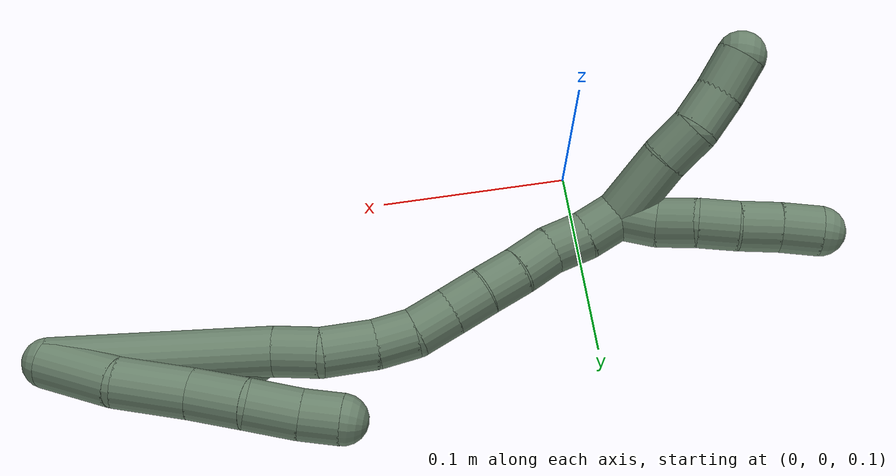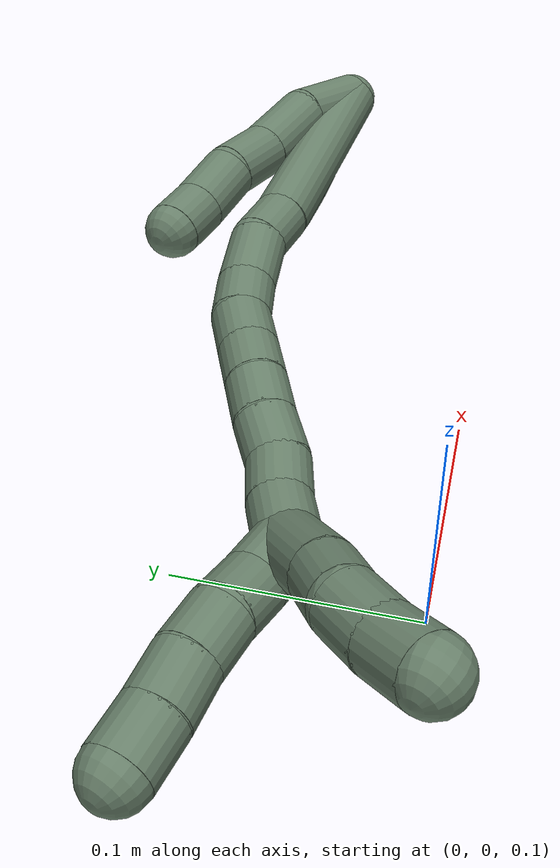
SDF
<sdf version="1.7">
 <world name="default">
  <model name="17">
   <static>0</static>
   <link name="17">
    <collision name="collision-cylinder-e_1_2_8">
     <pose>0.00078 -0.005788 0.018931 0.296702 0.039392 0.005888</pose>
     <geometry><cylinder><radius>0.0125</radius><length>0.039623</length></cylinder></geometry>
     <surface>
      <friction><ode><mu>1.16</mu><mu2>1.16</mu2><slip1>0</slip1><slip2>0</slip2></ode></friction>
      <contact><ode><kp>1e+06</kp><kd>1</kd><max_vel>0</max_vel><min_depth>0.001</min_depth></ode></contact>
     </surface>
    </collision>
    <visual name="visual-cylinder-e_1_2_8">
     <pose>0.00078 -0.005788 0.018931 0.296702 0.039392 0.005888</pose>
     <geometry><cylinder><radius>0.0125</radius><length>0.039623</length></cylinder></geometry>
     <material><ambient>0.415686 0.509804 0.423529 1</ambient></material>
    </visual>
    <collision name="collision-cylinder-e_2_8_9">
     <pose>0.00095 -0.011844 0.056234 0.014628 -0.033208 -0.000243</pose>
     <geometry><cylinder><radius>0.0125</radius><length>0.036768</length></cylinder></geometry>
     <surface>
      <friction><ode><mu>1.16</mu><mu2>1.16</mu2><slip1>0</slip1><slip2>0</slip2></ode></friction>
      <contact><ode><kp>1e+06</kp><kd>1</kd><max_vel>0</max_vel><min_depth>0.001</min_depth></ode></contact>
     </surface>
    </collision>
    <visual name="visual-cylinder-e_2_8_9">
     <pose>0.00095 -0.011844 0.056234 0.014628 -0.033208 -0.000243</pose>
     <geometry><cylinder><radius>0.0125</radius><length>0.036768</length></cylinder></geometry>
     <material><ambient>0.415686 0.509804 0.423529 1</ambient></material>
    </visual>
    <collision name="collision-cylinder-e_3_9_10">
     <pose>3e-05 -0.01422 0.08823 0.153402 -0.022469 -0.001727</pose>
     <geometry><cylinder><radius>0.0125</radius><length>0.027579</length></cylinder></geometry>
     <surface>
      <friction><ode><mu>1.16</mu><mu2>1.16</mu2><slip1>0</slip1><slip2>0</slip2></ode></friction>
      <contact><ode><kp>1e+06</kp><kd>1</kd><max_vel>0</max_vel><min_depth>0.001</min_depth></ode></contact>
     </surface>
    </collision>
    <visual name="visual-cylinder-e_3_9_10">
     <pose>3e-05 -0.01422 0.08823 0.153402 -0.022469 -0.001727</pose>
     <geometry><cylinder><radius>0.0125</radius><length>0.027579</length></cylinder></geometry>
     <material><ambient>0.415686 0.509804 0.423529 1</ambient></material>
    </visual>
    <collision name="collision-cylinder-e_4_10_11">
     <pose>5.8e-05 -0.014891 0.114761 -0.110717 0.026053 -0.001444</pose>
     <geometry><cylinder><radius>0.0125</radius><length>0.025982</length></cylinder></geometry>
     <surface>
      <friction><ode><mu>1.16</mu><mu2>1.16</mu2><slip1>0</slip1><slip2>0</slip2></ode></friction>
      <contact><ode><kp>1e+06</kp><kd>1</kd><max_vel>0</max_vel><min_depth>0.001</min_depth></ode></contact>
     </surface>
    </collision>
    <visual name="visual-cylinder-e_4_10_11">
     <pose>5.8e-05 -0.014891 0.114761 -0.110717 0.026053 -0.001444</pose>
     <geometry><cylinder><radius>0.0125</radius><length>0.025982</length></cylinder></geometry>
     <material><ambient>0.415686 0.509804 0.423529 1</ambient></material>
    </visual>
    <collision name="collision-cylinder-e_5_11_6">
     <pose>-0.000301 -0.01372 0.137665 0.026321 -0.069649 -0.000917</pose>
     <geometry><cylinder><radius>0.0125</radius><length>0.020048</length></cylinder></geometry>
     <surface>
      <friction><ode><mu>1.16</mu><mu2>1.16</mu2><slip1>0</slip1><slip2>0</slip2></ode></friction>
      <contact><ode><kp>1e+06</kp><kd>1</kd><max_vel>0</max_vel><min_depth>0.001</min_depth></ode></contact>
     </surface>
    </collision>
    <visual name="visual-cylinder-e_5_11_6">
     <pose>-0.000301 -0.01372 0.137665 0.026321 -0.069649 -0.000917</pose>
     <geometry><cylinder><radius>0.0125</radius><length>0.020048</length></cylinder></geometry>
     <material><ambient>0.415686 0.509804 0.423529 1</ambient></material>
    </visual>
    <collision name="collision-cylinder-e_1_2_12">
     <pose>-2.3e-05 5e-06 0.01 -0.000503 -0.002276 1e-06</pose>
     <geometry><cylinder><radius>0.0125</radius><length>0.02</length></cylinder></geometry>
     <surface>
      <friction><ode><mu>1.16</mu><mu2>1.16</mu2><slip1>0</slip1><slip2>0</slip2></ode></friction>
      <contact><ode><kp>1e+06</kp><kd>1</kd><max_vel>0</max_vel><min_depth>0.001</min_depth></ode></contact>
     </surface>
    </collision>
    <visual name="visual-cylinder-e_1_2_12">
     <pose>-2.3e-05 5e-06 0.01 -0.000503 -0.002276 1e-06</pose>
     <geometry><cylinder><radius>0.0125</radius><length>0.02</length></cylinder></geometry>
     <material><ambient>0.415686 0.509804 0.423529 1</ambient></material>
    </visual>
    <collision name="collision-cylinder-e_2_12_13">
     <pose>-0.00335 0.000783 0.029407 -0.081992 -0.33677 0.013946</pose>
     <geometry><cylinder><radius>0.0125</radius><length>0.02</length></cylinder></geometry>
     <surface>
      <friction><ode><mu>1.16</mu><mu2>1.16</mu2><slip1>0</slip1><slip2>0</slip2></ode></friction>
      <contact><ode><kp>1e+06</kp><kd>1</kd><max_vel>0</max_vel><min_depth>0.001</min_depth></ode></contact>
     </surface>
    </collision>
    <visual name="visual-cylinder-e_2_12_13">
     <pose>-0.00335 0.000783 0.029407 -0.081992 -0.33677 0.013946</pose>
     <geometry><cylinder><radius>0.0125</radius><length>0.02</length></cylinder></geometry>
     <material><ambient>0.415686 0.509804 0.423529 1</ambient></material>
    </visual>
    <collision name="collision-cylinder-e_3_13_14">
     <pose>-0.0077 0.004622 0.048274 -0.313439 -0.104754 0.016568</pose>
     <geometry><cylinder><radius>0.0125</radius><length>0.02</length></cylinder></geometry>
     <surface>
      <friction><ode><mu>1.16</mu><mu2>1.16</mu2><slip1>0</slip1><slip2>0</slip2></ode></friction>
      <contact><ode><kp>1e+06</kp><kd>1</kd><max_vel>0</max_vel><min_depth>0.001</min_depth></ode></contact>
     </surface>
    </collision>
    <visual name="visual-cylinder-e_3_13_14">
     <pose>-0.0077 0.004622 0.048274 -0.313439 -0.104754 0.016568</pose>
     <geometry><cylinder><radius>0.0125</radius><length>0.02</length></cylinder></geometry>
     <material><ambient>0.415686 0.509804 0.423529 1</ambient></material>
    </visual>
    <collision name="collision-cylinder-e_4_14_15">
     <pose>-0.011612 0.007846 0.067313 -0.016355 -0.290771 0.002395</pose>
     <geometry><cylinder><radius>0.0125</radius><length>0.02</length></cylinder></geometry>
     <surface>
      <friction><ode><mu>1.16</mu><mu2>1.16</mu2><slip1>0</slip1><slip2>0</slip2></ode></friction>
      <contact><ode><kp>1e+06</kp><kd>1</kd><max_vel>0</max_vel><min_depth>0.001</min_depth></ode></contact>
     </surface>
    </collision>
    <visual name="visual-cylinder-e_4_14_15">
     <pose>-0.011612 0.007846 0.067313 -0.016355 -0.290771 0.002395</pose>
     <geometry><cylinder><radius>0.0125</radius><length>0.02</length></cylinder></geometry>
     <material><ambient>0.415686 0.509804 0.423529 1</ambient></material>
    </visual>
    <collision name="collision-cylinder-e_5_15_5">
     <pose>-0.016532 0.00849 0.086667 -0.049849 -0.206732 0.005172</pose>
     <geometry><cylinder><radius>0.0125</radius><length>0.02</length></cylinder></geometry>
     <surface>
      <friction><ode><mu>1.16</mu><mu2>1.16</mu2><slip1>0</slip1><slip2>0</slip2></ode></friction>
      <contact><ode><kp>1e+06</kp><kd>1</kd><max_vel>0</max_vel><min_depth>0.001</min_depth></ode></contact>
     </surface>
    </collision>
    <visual name="visual-cylinder-e_5_15_5">
     <pose>-0.016532 0.00849 0.086667 -0.049849 -0.206732 0.005172</pose>
     <geometry><cylinder><radius>0.0125</radius><length>0.02</length></cylinder></geometry>
     <material><ambient>0.415686 0.509804 0.423529 1</ambient></material>
    </visual>
    <collision name="collision-cylinder-e_1_2_16">
     <pose>-0.012331 0.002821 0.053541 -0.052641 -0.226056 0.005977</pose>
     <geometry><cylinder><radius>0.0125</radius><length>0.11003</length></cylinder></geometry>
     <surface>
      <friction><ode><mu>1.16</mu><mu2>1.16</mu2><slip1>0</slip1><slip2>0</slip2></ode></friction>
      <contact><ode><kp>1e+06</kp><kd>1</kd><max_vel>0</max_vel><min_depth>0.001</min_depth></ode></contact>
     </surface>
    </collision>
    <visual name="visual-cylinder-e_1_2_16">
     <pose>-0.012331 0.002821 0.053541 -0.052641 -0.226056 0.005977</pose>
     <geometry><cylinder><radius>0.0125</radius><length>0.11003</length></cylinder></geometry>
     <material><ambient>0.415686 0.509804 0.423529 1</ambient></material>
    </visual>
    <collision name="collision-cylinder-e_2_16_17">
     <pose>-0.026419 0.005103 0.118331 0.047865 -0.154813 -0.003713</pose>
     <geometry><cylinder><radius>0.0125</radius><length>0.022796</length></cylinder></geometry>
     <surface>
      <friction><ode><mu>1.16</mu><mu2>1.16</mu2><slip1>0</slip1><slip2>0</slip2></ode></friction>
      <contact><ode><kp>1e+06</kp><kd>1</kd><max_vel>0</max_vel><min_depth>0.001</min_depth></ode></contact>
     </surface>
    </collision>
    <visual name="visual-cylinder-e_2_16_17">
     <pose>-0.026419 0.005103 0.118331 0.047865 -0.154813 -0.003713</pose>
     <geometry><cylinder><radius>0.0125</radius><length>0.022796</length></cylinder></geometry>
     <material><ambient>0.415686 0.509804 0.423529 1</ambient></material>
    </visual>
    <collision name="collision-cylinder-e_3_17_18">
     <pose>-0.032209 0.007654 0.141949 -0.244719 -0.3063 0.03796</pose>
     <geometry><cylinder><radius>0.0125</radius><length>0.026744</length></cylinder></geometry>
     <surface>
      <friction><ode><mu>1.16</mu><mu2>1.16</mu2><slip1>0</slip1><slip2>0</slip2></ode></friction>
      <contact><ode><kp>1e+06</kp><kd>1</kd><max_vel>0</max_vel><min_depth>0.001</min_depth></ode></contact>
     </surface>
    </collision>
    <visual name="visual-cylinder-e_3_17_18">
     <pose>-0.032209 0.007654 0.141949 -0.244719 -0.3063 0.03796</pose>
     <geometry><cylinder><radius>0.0125</radius><length>0.026744</length></cylinder></geometry>
     <material><ambient>0.415686 0.509804 0.423529 1</ambient></material>
    </visual>
    <collision name="collision-cylinder-e_4_18_19">
     <pose>-0.040567 0.012445 0.163185 -0.189663 -0.446879 0.043221</pose>
     <geometry><cylinder><radius>0.0125</radius><length>0.020023</length></cylinder></geometry>
     <surface>
      <friction><ode><mu>1.16</mu><mu2>1.16</mu2><slip1>0</slip1><slip2>0</slip2></ode></friction>
      <contact><ode><kp>1e+06</kp><kd>1</kd><max_vel>0</max_vel><min_depth>0.001</min_depth></ode></contact>
     </surface>
    </collision>
    <visual name="visual-cylinder-e_4_18_19">
     <pose>-0.040567 0.012445 0.163185 -0.189663 -0.446879 0.043221</pose>
     <geometry><cylinder><radius>0.0125</radius><length>0.020023</length></cylinder></geometry>
     <material><ambient>0.415686 0.509804 0.423529 1</ambient></material>
    </visual>
    <collision name="collision-cylinder-e_5_19_20">
     <pose>-0.051366 0.016525 0.179566 -0.306585 -0.687556 0.110511</pose>
     <geometry><cylinder><radius>0.0125</radius><length>0.020397</length></cylinder></geometry>
     <surface>
      <friction><ode><mu>1.16</mu><mu2>1.16</mu2><slip1>0</slip1><slip2>0</slip2></ode></friction>
      <contact><ode><kp>1e+06</kp><kd>1</kd><max_vel>0</max_vel><min_depth>0.001</min_depth></ode></contact>
     </surface>
    </collision>
    <visual name="visual-cylinder-e_5_19_20">
     <pose>-0.051366 0.016525 0.179566 -0.306585 -0.687556 0.110511</pose>
     <geometry><cylinder><radius>0.0125</radius><length>0.020397</length></cylinder></geometry>
     <material><ambient>0.415686 0.509804 0.423529 1</ambient></material>
    </visual>
    <collision name="collision-cylinder-e_6_20_21">
     <pose>-0.064299 0.02087 0.194457 -0.260424 -0.702271 0.095867</pose>
     <geometry><cylinder><radius>0.0125</radius><length>0.020002</length></cylinder></geometry>
     <surface>
      <friction><ode><mu>1.16</mu><mu2>1.16</mu2><slip1>0</slip1><slip2>0</slip2></ode></friction>
      <contact><ode><kp>1e+06</kp><kd>1</kd><max_vel>0</max_vel><min_depth>0.001</min_depth></ode></contact>
     </surface>
    </collision>
    <visual name="visual-cylinder-e_6_20_21">
     <pose>-0.064299 0.02087 0.194457 -0.260424 -0.702271 0.095867</pose>
     <geometry><cylinder><radius>0.0125</radius><length>0.020002</length></cylinder></geometry>
     <material><ambient>0.415686 0.509804 0.423529 1</ambient></material>
    </visual>
    <collision name="collision-cylinder-e_7_21_22">
     <pose>-0.076959 0.025612 0.209177 -0.361472 -0.668475 0.126742</pose>
     <geometry><cylinder><radius>0.0125</radius><length>0.020006</length></cylinder></geometry>
     <surface>
      <friction><ode><mu>1.16</mu><mu2>1.16</mu2><slip1>0</slip1><slip2>0</slip2></ode></friction>
      <contact><ode><kp>1e+06</kp><kd>1</kd><max_vel>0</max_vel><min_depth>0.001</min_depth></ode></contact>
     </surface>
    </collision>
    <visual name="visual-cylinder-e_7_21_22">
     <pose>-0.076959 0.025612 0.209177 -0.361472 -0.668475 0.126742</pose>
     <geometry><cylinder><radius>0.0125</radius><length>0.020006</length></cylinder></geometry>
     <material><ambient>0.415686 0.509804 0.423529 1</ambient></material>
    </visual>
    <collision name="collision-cylinder-e_8_22_23">
     <pose>-0.089613 0.031893 0.223308 -0.4766 -0.701462 0.177279</pose>
     <geometry><cylinder><radius>0.0125</radius><length>0.020001</length></cylinder></geometry>
     <surface>
      <friction><ode><mu>1.16</mu><mu2>1.16</mu2><slip1>0</slip1><slip2>0</slip2></ode></friction>
      <contact><ode><kp>1e+06</kp><kd>1</kd><max_vel>0</max_vel><min_depth>0.001</min_depth></ode></contact>
     </surface>
    </collision>
    <visual name="visual-cylinder-e_8_22_23">
     <pose>-0.089613 0.031893 0.223308 -0.4766 -0.701462 0.177279</pose>
     <geometry><cylinder><radius>0.0125</radius><length>0.020001</length></cylinder></geometry>
     <material><ambient>0.415686 0.509804 0.423529 1</ambient></material>
    </visual>
    <collision name="collision-cylinder-e_9_23_24">
     <pose>-0.101443 0.037019 0.23837 -0.193541 -0.567607 0.056613</pose>
     <geometry><cylinder><radius>0.0125</radius><length>0.02</length></cylinder></geometry>
     <surface>
      <friction><ode><mu>1.16</mu><mu2>1.16</mu2><slip1>0</slip1><slip2>0</slip2></ode></friction>
      <contact><ode><kp>1e+06</kp><kd>1</kd><max_vel>0</max_vel><min_depth>0.001</min_depth></ode></contact>
     </surface>
    </collision>
    <visual name="visual-cylinder-e_9_23_24">
     <pose>-0.101443 0.037019 0.23837 -0.193541 -0.567607 0.056613</pose>
     <geometry><cylinder><radius>0.0125</radius><length>0.02</length></cylinder></geometry>
     <material><ambient>0.415686 0.509804 0.423529 1</ambient></material>
    </visual>
    <collision name="collision-cylinder-e_10_24_1">
     <pose>-0.113444 0.039606 0.254073 -0.129246 -0.724155 0.049014</pose>
     <geometry><cylinder><radius>0.0125</radius><length>0.02</length></cylinder></geometry>
     <surface>
      <friction><ode><mu>1.16</mu><mu2>1.16</mu2><slip1>0</slip1><slip2>0</slip2></ode></friction>
      <contact><ode><kp>1e+06</kp><kd>1</kd><max_vel>0</max_vel><min_depth>0.001</min_depth></ode></contact>
     </surface>
    </collision>
    <visual name="visual-cylinder-e_10_24_1">
     <pose>-0.113444 0.039606 0.254073 -0.129246 -0.724155 0.049014</pose>
     <geometry><cylinder><radius>0.0125</radius><length>0.02</length></cylinder></geometry>
     <material><ambient>0.415686 0.509804 0.423529 1</ambient></material>
    </visual>
    <collision name="collision-cylinder-e_1_1_25">
     <pose>-0.1198 0.040021 0.271483 0.055101 0.026955 0.000743</pose>
     <geometry><cylinder><radius>0.0125</radius><length>0.02</length></cylinder></geometry>
     <surface>
      <friction><ode><mu>1.16</mu><mu2>1.16</mu2><slip1>0</slip1><slip2>0</slip2></ode></friction>
      <contact><ode><kp>1e+06</kp><kd>1</kd><max_vel>0</max_vel><min_depth>0.001</min_depth></ode></contact>
     </surface>
    </collision>
    <visual name="visual-cylinder-e_1_1_25">
     <pose>-0.1198 0.040021 0.271483 0.055101 0.026955 0.000743</pose>
     <geometry><cylinder><radius>0.0125</radius><length>0.02</length></cylinder></geometry>
     <material><ambient>0.415686 0.509804 0.423529 1</ambient></material>
    </visual>
    <collision name="collision-cylinder-e_2_25_26">
     <pose>-0.121047 0.036673 0.290944 0.286983 -0.152277 -0.022043</pose>
     <geometry><cylinder><radius>0.0125</radius><length>0.02</length></cylinder></geometry>
     <surface>
      <friction><ode><mu>1.16</mu><mu2>1.16</mu2><slip1>0</slip1><slip2>0</slip2></ode></friction>
      <contact><ode><kp>1e+06</kp><kd>1</kd><max_vel>0</max_vel><min_depth>0.001</min_depth></ode></contact>
     </surface>
    </collision>
    <visual name="visual-cylinder-e_2_25_26">
     <pose>-0.121047 0.036673 0.290944 0.286983 -0.152277 -0.022043</pose>
     <geometry><cylinder><radius>0.0125</radius><length>0.02</length></cylinder></geometry>
     <material><ambient>0.415686 0.509804 0.423529 1</ambient></material>
    </visual>
    <collision name="collision-cylinder-e_3_26_27">
     <pose>-0.123489 0.033092 0.31035 0.078784 -0.092642 -0.003654</pose>
     <geometry><cylinder><radius>0.0125</radius><length>0.02</length></cylinder></geometry>
     <surface>
      <friction><ode><mu>1.16</mu><mu2>1.16</mu2><slip1>0</slip1><slip2>0</slip2></ode></friction>
      <contact><ode><kp>1e+06</kp><kd>1</kd><max_vel>0</max_vel><min_depth>0.001</min_depth></ode></contact>
     </surface>
    </collision>
    <visual name="visual-cylinder-e_3_26_27">
     <pose>-0.123489 0.033092 0.31035 0.078784 -0.092642 -0.003654</pose>
     <geometry><cylinder><radius>0.0125</radius><length>0.02</length></cylinder></geometry>
     <material><ambient>0.415686 0.509804 0.423529 1</ambient></material>
    </visual>
    <collision name="collision-cylinder-e_4_27_28">
     <pose>-0.125851 0.032515 0.33017 -0.020974 -0.144223 0.001515</pose>
     <geometry><cylinder><radius>0.0125</radius><length>0.02</length></cylinder></geometry>
     <surface>
      <friction><ode><mu>1.16</mu><mu2>1.16</mu2><slip1>0</slip1><slip2>0</slip2></ode></friction>
      <contact><ode><kp>1e+06</kp><kd>1</kd><max_vel>0</max_vel><min_depth>0.001</min_depth></ode></contact>
     </surface>
    </collision>
    <visual name="visual-cylinder-e_4_27_28">
     <pose>-0.125851 0.032515 0.33017 -0.020974 -0.144223 0.001515</pose>
     <geometry><cylinder><radius>0.0125</radius><length>0.02</length></cylinder></geometry>
     <material><ambient>0.415686 0.509804 0.423529 1</ambient></material>
    </visual>
    <collision name="collision-cylinder-e_5_28_4">
     <pose>-0.128091 0.032683 0.350032 0.003973 -0.080373 -0.00016</pose>
     <geometry><cylinder><radius>0.0125</radius><length>0.02</length></cylinder></geometry>
     <surface>
      <friction><ode><mu>1.16</mu><mu2>1.16</mu2><slip1>0</slip1><slip2>0</slip2></ode></friction>
      <contact><ode><kp>1e+06</kp><kd>1</kd><max_vel>0</max_vel><min_depth>0.001</min_depth></ode></contact>
     </surface>
    </collision>
    <visual name="visual-cylinder-e_5_28_4">
     <pose>-0.128091 0.032683 0.350032 0.003973 -0.080373 -0.00016</pose>
     <geometry><cylinder><radius>0.0125</radius><length>0.02</length></cylinder></geometry>
     <material><ambient>0.415686 0.509804 0.423529 1</ambient></material>
    </visual>
    <collision name="collision-cylinder-e_1_1_29">
     <pose>-0.135487 0.035862 0.269988 0.50664 -1.00894 -0.283946</pose>
     <geometry><cylinder><radius>0.0125</radius><length>0.036437</length></cylinder></geometry>
     <surface>
      <friction><ode><mu>1.16</mu><mu2>1.16</mu2><slip1>0</slip1><slip2>0</slip2></ode></friction>
      <contact><ode><kp>1e+06</kp><kd>1</kd><max_vel>0</max_vel><min_depth>0.001</min_depth></ode></contact>
     </surface>
    </collision>
    <visual name="visual-cylinder-e_1_1_29">
     <pose>-0.135487 0.035862 0.269988 0.50664 -1.00894 -0.283946</pose>
     <geometry><cylinder><radius>0.0125</radius><length>0.036437</length></cylinder></geometry>
     <material><ambient>0.415686 0.509804 0.423529 1</ambient></material>
    </visual>
    <collision name="collision-cylinder-e_2_29_30">
     <pose>-0.159467 0.02897 0.28444 0.350724 -0.932511 -0.177868</pose>
     <geometry><cylinder><radius>0.0125</radius><length>0.021322</length></cylinder></geometry>
     <surface>
      <friction><ode><mu>1.16</mu><mu2>1.16</mu2><slip1>0</slip1><slip2>0</slip2></ode></friction>
      <contact><ode><kp>1e+06</kp><kd>1</kd><max_vel>0</max_vel><min_depth>0.001</min_depth></ode></contact>
     </surface>
    </collision>
    <visual name="visual-cylinder-e_2_29_30">
     <pose>-0.159467 0.02897 0.28444 0.350724 -0.932511 -0.177868</pose>
     <geometry><cylinder><radius>0.0125</radius><length>0.021322</length></cylinder></geometry>
     <material><ambient>0.415686 0.509804 0.423529 1</ambient></material>
    </visual>
    <collision name="collision-cylinder-e_3_30_31">
     <pose>-0.177483 0.027176 0.294736 -0.089576 -1.1398 0.057425</pose>
     <geometry><cylinder><radius>0.0125</radius><length>0.020812</length></cylinder></geometry>
     <surface>
      <friction><ode><mu>1.16</mu><mu2>1.16</mu2><slip1>0</slip1><slip2>0</slip2></ode></friction>
      <contact><ode><kp>1e+06</kp><kd>1</kd><max_vel>0</max_vel><min_depth>0.001</min_depth></ode></contact>
     </surface>
    </collision>
    <visual name="visual-cylinder-e_3_30_31">
     <pose>-0.177483 0.027176 0.294736 -0.089576 -1.1398 0.057425</pose>
     <geometry><cylinder><radius>0.0125</radius><length>0.020812</length></cylinder></geometry>
     <material><ambient>0.415686 0.509804 0.423529 1</ambient></material>
    </visual>
    <collision name="collision-cylinder-e_4_31_3">
     <pose>-0.196991 0.026996 0.302726 0.15425 -1.21774 -0.107659</pose>
     <geometry><cylinder><radius>0.0125</radius><length>0.021429</length></cylinder></geometry>
     <surface>
      <friction><ode><mu>1.16</mu><mu2>1.16</mu2><slip1>0</slip1><slip2>0</slip2></ode></friction>
      <contact><ode><kp>1e+06</kp><kd>1</kd><max_vel>0</max_vel><min_depth>0.001</min_depth></ode></contact>
     </surface>
    </collision>
    <visual name="visual-cylinder-e_4_31_3">
     <pose>-0.196991 0.026996 0.302726 0.15425 -1.21774 -0.107659</pose>
     <geometry><cylinder><radius>0.0125</radius><length>0.021429</length></cylinder></geometry>
     <material><ambient>0.415686 0.509804 0.423529 1</ambient></material>
    </visual>
    <collision name="collision-sphere-3">
     <pose>-0.207045 0.026427 0.306387 0 -0 0</pose>
     <geometry><sphere><radius>0.0125</radius></sphere></geometry>
     <surface>
      <friction><ode><mu>1.16</mu><mu2>1.16</mu2><slip1>0</slip1><slip2>0</slip2></ode></friction>
      <contact><ode><kp>1e+06</kp><kd>1</kd><max_vel>0</max_vel><min_depth>0.001</min_depth></ode></contact>
     </surface>
    </collision>
    <visual name="visual-sphere-3">
     <pose>-0.207045 0.026427 0.306387 0 -0 0</pose>
     <geometry><sphere><radius>0.0125</radius></sphere></geometry>
     <material><ambient>0.415686 0.509804 0.423529 1</ambient></material>
    </visual>
    <collision name="collision-sphere-31">
     <pose>-0.186937 0.027565 0.299065 0 -0 0</pose>
     <geometry><sphere><radius>0.0125</radius></sphere></geometry>
     <surface>
      <friction><ode><mu>1.16</mu><mu2>1.16</mu2><slip1>0</slip1><slip2>0</slip2></ode></friction>
      <contact><ode><kp>1e+06</kp><kd>1</kd><max_vel>0</max_vel><min_depth>0.001</min_depth></ode></contact>
     </surface>
    </collision>
    <visual name="visual-sphere-31">
     <pose>-0.186937 0.027565 0.299065 0 -0 0</pose>
     <geometry><sphere><radius>0.0125</radius></sphere></geometry>
     <material><ambient>0.415686 0.509804 0.423529 1</ambient></material>
    </visual>
    <collision name="collision-sphere-30">
     <pose>-0.168029 0.026788 0.290406 0 -0 0</pose>
     <geometry><sphere><radius>0.0125</radius></sphere></geometry>
     <surface>
      <friction><ode><mu>1.16</mu><mu2>1.16</mu2><slip1>0</slip1><slip2>0</slip2></ode></friction>
      <contact><ode><kp>1e+06</kp><kd>1</kd><max_vel>0</max_vel><min_depth>0.001</min_depth></ode></contact>
     </surface>
    </collision>
    <visual name="visual-sphere-30">
     <pose>-0.168029 0.026788 0.290406 0 -0 0</pose>
     <geometry><sphere><radius>0.0125</radius></sphere></geometry>
     <material><ambient>0.415686 0.509804 0.423529 1</ambient></material>
    </visual>
    <collision name="collision-sphere-29">
     <pose>-0.150905 0.031152 0.278475 0 -0 0</pose>
     <geometry><sphere><radius>0.0125</radius></sphere></geometry>
     <surface>
      <friction><ode><mu>1.16</mu><mu2>1.16</mu2><slip1>0</slip1><slip2>0</slip2></ode></friction>
      <contact><ode><kp>1e+06</kp><kd>1</kd><max_vel>0</max_vel><min_depth>0.001</min_depth></ode></contact>
     </surface>
    </collision>
    <visual name="visual-sphere-29">
     <pose>-0.150905 0.031152 0.278475 0 -0 0</pose>
     <geometry><sphere><radius>0.0125</radius></sphere></geometry>
     <material><ambient>0.415686 0.509804 0.423529 1</ambient></material>
    </visual>
    <collision name="collision-sphere-4">
     <pose>-0.128894 0.032644 0.36 0 -0 0</pose>
     <geometry><sphere><radius>0.0125</radius></sphere></geometry>
     <surface>
      <friction><ode><mu>1.16</mu><mu2>1.16</mu2><slip1>0</slip1><slip2>0</slip2></ode></friction>
      <contact><ode><kp>1e+06</kp><kd>1</kd><max_vel>0</max_vel><min_depth>0.001</min_depth></ode></contact>
     </surface>
    </collision>
    <visual name="visual-sphere-4">
     <pose>-0.128894 0.032644 0.36 0 -0 0</pose>
     <geometry><sphere><radius>0.0125</radius></sphere></geometry>
     <material><ambient>0.415686 0.509804 0.423529 1</ambient></material>
    </visual>
    <collision name="collision-sphere-28">
     <pose>-0.127289 0.032723 0.340064 0 -0 0</pose>
     <geometry><sphere><radius>0.0125</radius></sphere></geometry>
     <surface>
      <friction><ode><mu>1.16</mu><mu2>1.16</mu2><slip1>0</slip1><slip2>0</slip2></ode></friction>
      <contact><ode><kp>1e+06</kp><kd>1</kd><max_vel>0</max_vel><min_depth>0.001</min_depth></ode></contact>
     </surface>
    </collision>
    <visual name="visual-sphere-28">
     <pose>-0.127289 0.032723 0.340064 0 -0 0</pose>
     <geometry><sphere><radius>0.0125</radius></sphere></geometry>
     <material><ambient>0.415686 0.509804 0.423529 1</ambient></material>
    </visual>
    <collision name="collision-sphere-27">
     <pose>-0.124414 0.032308 0.320276 0 -0 0</pose>
     <geometry><sphere><radius>0.0125</radius></sphere></geometry>
     <surface>
      <friction><ode><mu>1.16</mu><mu2>1.16</mu2><slip1>0</slip1><slip2>0</slip2></ode></friction>
      <contact><ode><kp>1e+06</kp><kd>1</kd><max_vel>0</max_vel><min_depth>0.001</min_depth></ode></contact>
     </surface>
    </collision>
    <visual name="visual-sphere-27">
     <pose>-0.124414 0.032308 0.320276 0 -0 0</pose>
     <geometry><sphere><radius>0.0125</radius></sphere></geometry>
     <material><ambient>0.415686 0.509804 0.423529 1</ambient></material>
    </visual>
    <collision name="collision-sphere-26">
     <pose>-0.122564 0.033875 0.300424 0 -0 0</pose>
     <geometry><sphere><radius>0.0125</radius></sphere></geometry>
     <surface>
      <friction><ode><mu>1.16</mu><mu2>1.16</mu2><slip1>0</slip1><slip2>0</slip2></ode></friction>
      <contact><ode><kp>1e+06</kp><kd>1</kd><max_vel>0</max_vel><min_depth>0.001</min_depth></ode></contact>
     </surface>
    </collision>
    <visual name="visual-sphere-26">
     <pose>-0.122564 0.033875 0.300424 0 -0 0</pose>
     <geometry><sphere><radius>0.0125</radius></sphere></geometry>
     <material><ambient>0.415686 0.509804 0.423529 1</ambient></material>
    </visual>
    <collision name="collision-sphere-25">
     <pose>-0.11953 0.039471 0.281464 0 -0 0</pose>
     <geometry><sphere><radius>0.0125</radius></sphere></geometry>
     <surface>
      <friction><ode><mu>1.16</mu><mu2>1.16</mu2><slip1>0</slip1><slip2>0</slip2></ode></friction>
      <contact><ode><kp>1e+06</kp><kd>1</kd><max_vel>0</max_vel><min_depth>0.001</min_depth></ode></contact>
     </surface>
    </collision>
    <visual name="visual-sphere-25">
     <pose>-0.11953 0.039471 0.281464 0 -0 0</pose>
     <geometry><sphere><radius>0.0125</radius></sphere></geometry>
     <material><ambient>0.415686 0.509804 0.423529 1</ambient></material>
    </visual>
    <collision name="collision-sphere-1">
     <pose>-0.120069 0.040572 0.261502 0 -0 0</pose>
     <geometry><sphere><radius>0.0125</radius></sphere></geometry>
     <surface>
      <friction><ode><mu>1.16</mu><mu2>1.16</mu2><slip1>0</slip1><slip2>0</slip2></ode></friction>
      <contact><ode><kp>1e+06</kp><kd>1</kd><max_vel>0</max_vel><min_depth>0.001</min_depth></ode></contact>
     </surface>
    </collision>
    <visual name="visual-sphere-1">
     <pose>-0.120069 0.040572 0.261502 0 -0 0</pose>
     <geometry><sphere><radius>0.0125</radius></sphere></geometry>
     <material><ambient>0.415686 0.509804 0.423529 1</ambient></material>
    </visual>
    <collision name="collision-sphere-24">
     <pose>-0.106819 0.038641 0.246645 0 -0 0</pose>
     <geometry><sphere><radius>0.0125</radius></sphere></geometry>
     <surface>
      <friction><ode><mu>1.16</mu><mu2>1.16</mu2><slip1>0</slip1><slip2>0</slip2></ode></friction>
      <contact><ode><kp>1e+06</kp><kd>1</kd><max_vel>0</max_vel><min_depth>0.001</min_depth></ode></contact>
     </surface>
    </collision>
    <visual name="visual-sphere-24">
     <pose>-0.106819 0.038641 0.246645 0 -0 0</pose>
     <geometry><sphere><radius>0.0125</radius></sphere></geometry>
     <material><ambient>0.415686 0.509804 0.423529 1</ambient></material>
    </visual>
    <collision name="collision-sphere-23">
     <pose>-0.096066 0.035397 0.230096 0 -0 0</pose>
     <geometry><sphere><radius>0.0125</radius></sphere></geometry>
     <surface>
      <friction><ode><mu>1.16</mu><mu2>1.16</mu2><slip1>0</slip1><slip2>0</slip2></ode></friction>
      <contact><ode><kp>1e+06</kp><kd>1</kd><max_vel>0</max_vel><min_depth>0.001</min_depth></ode></contact>
     </surface>
    </collision>
    <visual name="visual-sphere-23">
     <pose>-0.096066 0.035397 0.230096 0 -0 0</pose>
     <geometry><sphere><radius>0.0125</radius></sphere></geometry>
     <material><ambient>0.415686 0.509804 0.423529 1</ambient></material>
    </visual>
    <collision name="collision-sphere-22">
     <pose>-0.083159 0.028388 0.21652 0 -0 0</pose>
     <geometry><sphere><radius>0.0125</radius></sphere></geometry>
     <surface>
      <friction><ode><mu>1.16</mu><mu2>1.16</mu2><slip1>0</slip1><slip2>0</slip2></ode></friction>
      <contact><ode><kp>1e+06</kp><kd>1</kd><max_vel>0</max_vel><min_depth>0.001</min_depth></ode></contact>
     </surface>
    </collision>
    <visual name="visual-sphere-22">
     <pose>-0.083159 0.028388 0.21652 0 -0 0</pose>
     <geometry><sphere><radius>0.0125</radius></sphere></geometry>
     <material><ambient>0.415686 0.509804 0.423529 1</ambient></material>
    </visual>
    <collision name="collision-sphere-21">
     <pose>-0.07076 0.022836 0.201834 0 -0 0</pose>
     <geometry><sphere><radius>0.0125</radius></sphere></geometry>
     <surface>
      <friction><ode><mu>1.16</mu><mu2>1.16</mu2><slip1>0</slip1><slip2>0</slip2></ode></friction>
      <contact><ode><kp>1e+06</kp><kd>1</kd><max_vel>0</max_vel><min_depth>0.001</min_depth></ode></contact>
     </surface>
    </collision>
    <visual name="visual-sphere-21">
     <pose>-0.07076 0.022836 0.201834 0 -0 0</pose>
     <geometry><sphere><radius>0.0125</radius></sphere></geometry>
     <material><ambient>0.415686 0.509804 0.423529 1</ambient></material>
    </visual>
    <collision name="collision-sphere-6">
     <pose>-0.000998 -0.013983 0.147661 0 -0 0</pose>
     <geometry><sphere><radius>0.0125</radius></sphere></geometry>
     <surface>
      <friction><ode><mu>1.16</mu><mu2>1.16</mu2><slip1>0</slip1><slip2>0</slip2></ode></friction>
      <contact><ode><kp>1e+06</kp><kd>1</kd><max_vel>0</max_vel><min_depth>0.001</min_depth></ode></contact>
     </surface>
    </collision>
    <visual name="visual-sphere-6">
     <pose>-0.000998 -0.013983 0.147661 0 -0 0</pose>
     <geometry><sphere><radius>0.0125</radius></sphere></geometry>
     <material><ambient>0.415686 0.509804 0.423529 1</ambient></material>
    </visual>
    <collision name="collision-sphere-11">
     <pose>0.000397 -0.013456 0.127668 0 -0 0</pose>
     <geometry><sphere><radius>0.0125</radius></sphere></geometry>
     <surface>
      <friction><ode><mu>1.16</mu><mu2>1.16</mu2><slip1>0</slip1><slip2>0</slip2></ode></friction>
      <contact><ode><kp>1e+06</kp><kd>1</kd><max_vel>0</max_vel><min_depth>0.001</min_depth></ode></contact>
     </surface>
    </collision>
    <visual name="visual-sphere-11">
     <pose>0.000397 -0.013456 0.127668 0 -0 0</pose>
     <geometry><sphere><radius>0.0125</radius></sphere></geometry>
     <material><ambient>0.415686 0.509804 0.423529 1</ambient></material>
    </visual>
    <collision name="collision-sphere-10">
     <pose>-0.00028 -0.016326 0.101854 0 -0 0</pose>
     <geometry><sphere><radius>0.0125</radius></sphere></geometry>
     <surface>
      <friction><ode><mu>1.16</mu><mu2>1.16</mu2><slip1>0</slip1><slip2>0</slip2></ode></friction>
      <contact><ode><kp>1e+06</kp><kd>1</kd><max_vel>0</max_vel><min_depth>0.001</min_depth></ode></contact>
     </surface>
    </collision>
    <visual name="visual-sphere-10">
     <pose>-0.00028 -0.016326 0.101854 0 -0 0</pose>
     <geometry><sphere><radius>0.0125</radius></sphere></geometry>
     <material><ambient>0.415686 0.509804 0.423529 1</ambient></material>
    </visual>
    <collision name="collision-sphere-9">
     <pose>0.00034 -0.012113 0.074606 0 -0 0</pose>
     <geometry><sphere><radius>0.0125</radius></sphere></geometry>
     <surface>
      <friction><ode><mu>1.16</mu><mu2>1.16</mu2><slip1>0</slip1><slip2>0</slip2></ode></friction>
      <contact><ode><kp>1e+06</kp><kd>1</kd><max_vel>0</max_vel><min_depth>0.001</min_depth></ode></contact>
     </surface>
    </collision>
    <visual name="visual-sphere-9">
     <pose>0.00034 -0.012113 0.074606 0 -0 0</pose>
     <geometry><sphere><radius>0.0125</radius></sphere></geometry>
     <material><ambient>0.415686 0.509804 0.423529 1</ambient></material>
    </visual>
    <collision name="collision-sphere-2">
     <geometry><sphere><radius>0.0125</radius></sphere></geometry>
     <surface>
      <friction><ode><mu>1.16</mu><mu2>1.16</mu2><slip1>0</slip1><slip2>0</slip2></ode></friction>
      <contact><ode><kp>1e+06</kp><kd>1</kd><max_vel>0</max_vel><min_depth>0.001</min_depth></ode></contact>
     </surface>
    </collision>
    <visual name="visual-sphere-2">
     <geometry><sphere><radius>0.0125</radius></sphere></geometry>
     <material><ambient>0.415686 0.509804 0.423529 1</ambient></material>
    </visual>
    <collision name="collision-sphere-19">
     <pose>-0.044894 0.014147 0.172052 0 -0 0</pose>
     <geometry><sphere><radius>0.0125</radius></sphere></geometry>
     <surface>
      <friction><ode><mu>1.16</mu><mu2>1.16</mu2><slip1>0</slip1><slip2>0</slip2></ode></friction>
      <contact><ode><kp>1e+06</kp><kd>1</kd><max_vel>0</max_vel><min_depth>0.001</min_depth></ode></contact>
     </surface>
    </collision>
    <visual name="visual-sphere-19">
     <pose>-0.044894 0.014147 0.172052 0 -0 0</pose>
     <geometry><sphere><radius>0.0125</radius></sphere></geometry>
     <material><ambient>0.415686 0.509804 0.423529 1</ambient></material>
    </visual>
    <collision name="collision-sphere-8">
     <pose>0.00156 -0.011576 0.037862 0 -0 0</pose>
     <geometry><sphere><radius>0.0125</radius></sphere></geometry>
     <surface>
      <friction><ode><mu>1.16</mu><mu2>1.16</mu2><slip1>0</slip1><slip2>0</slip2></ode></friction>
      <contact><ode><kp>1e+06</kp><kd>1</kd><max_vel>0</max_vel><min_depth>0.001</min_depth></ode></contact>
     </surface>
    </collision>
    <visual name="visual-sphere-8">
     <pose>0.00156 -0.011576 0.037862 0 -0 0</pose>
     <geometry><sphere><radius>0.0125</radius></sphere></geometry>
     <material><ambient>0.415686 0.509804 0.423529 1</ambient></material>
    </visual>
    <collision name="collision-sphere-12">
     <pose>-4.6e-05 1e-05 0.02 0 -0 0</pose>
     <geometry><sphere><radius>0.0125</radius></sphere></geometry>
     <surface>
      <friction><ode><mu>1.16</mu><mu2>1.16</mu2><slip1>0</slip1><slip2>0</slip2></ode></friction>
      <contact><ode><kp>1e+06</kp><kd>1</kd><max_vel>0</max_vel><min_depth>0.001</min_depth></ode></contact>
     </surface>
    </collision>
    <visual name="visual-sphere-12">
     <pose>-4.6e-05 1e-05 0.02 0 -0 0</pose>
     <geometry><sphere><radius>0.0125</radius></sphere></geometry>
     <material><ambient>0.415686 0.509804 0.423529 1</ambient></material>
    </visual>
    <collision name="collision-sphere-13">
     <pose>-0.006654 0.001556 0.038813 0 -0 0</pose>
     <geometry><sphere><radius>0.0125</radius></sphere></geometry>
     <surface>
      <friction><ode><mu>1.16</mu><mu2>1.16</mu2><slip1>0</slip1><slip2>0</slip2></ode></friction>
      <contact><ode><kp>1e+06</kp><kd>1</kd><max_vel>0</max_vel><min_depth>0.001</min_depth></ode></contact>
     </surface>
    </collision>
    <visual name="visual-sphere-13">
     <pose>-0.006654 0.001556 0.038813 0 -0 0</pose>
     <geometry><sphere><radius>0.0125</radius></sphere></geometry>
     <material><ambient>0.415686 0.509804 0.423529 1</ambient></material>
    </visual>
    <collision name="collision-sphere-14">
     <pose>-0.008746 0.007689 0.057734 0 -0 0</pose>
     <geometry><sphere><radius>0.0125</radius></sphere></geometry>
     <surface>
      <friction><ode><mu>1.16</mu><mu2>1.16</mu2><slip1>0</slip1><slip2>0</slip2></ode></friction>
      <contact><ode><kp>1e+06</kp><kd>1</kd><max_vel>0</max_vel><min_depth>0.001</min_depth></ode></contact>
     </surface>
    </collision>
    <visual name="visual-sphere-14">
     <pose>-0.008746 0.007689 0.057734 0 -0 0</pose>
     <geometry><sphere><radius>0.0125</radius></sphere></geometry>
     <material><ambient>0.415686 0.509804 0.423529 1</ambient></material>
    </visual>
    <collision name="collision-sphere-15">
     <pose>-0.014479 0.008002 0.076892 0 -0 0</pose>
     <geometry><sphere><radius>0.0125</radius></sphere></geometry>
     <surface>
      <friction><ode><mu>1.16</mu><mu2>1.16</mu2><slip1>0</slip1><slip2>0</slip2></ode></friction>
      <contact><ode><kp>1e+06</kp><kd>1</kd><max_vel>0</max_vel><min_depth>0.001</min_depth></ode></contact>
     </surface>
    </collision>
    <visual name="visual-sphere-15">
     <pose>-0.014479 0.008002 0.076892 0 -0 0</pose>
     <geometry><sphere><radius>0.0125</radius></sphere></geometry>
     <material><ambient>0.415686 0.509804 0.423529 1</ambient></material>
    </visual>
    <collision name="collision-sphere-5">
     <pose>-0.018585 0.008978 0.096442 0 -0 0</pose>
     <geometry><sphere><radius>0.0125</radius></sphere></geometry>
     <surface>
      <friction><ode><mu>1.16</mu><mu2>1.16</mu2><slip1>0</slip1><slip2>0</slip2></ode></friction>
      <contact><ode><kp>1e+06</kp><kd>1</kd><max_vel>0</max_vel><min_depth>0.001</min_depth></ode></contact>
     </surface>
    </collision>
    <visual name="visual-sphere-5">
     <pose>-0.018585 0.008978 0.096442 0 -0 0</pose>
     <geometry><sphere><radius>0.0125</radius></sphere></geometry>
     <material><ambient>0.415686 0.509804 0.423529 1</ambient></material>
    </visual>
    <collision name="collision-sphere-16">
     <pose>-0.024662 0.005642 0.107082 0 -0 0</pose>
     <geometry><sphere><radius>0.0125</radius></sphere></geometry>
     <surface>
      <friction><ode><mu>1.16</mu><mu2>1.16</mu2><slip1>0</slip1><slip2>0</slip2></ode></friction>
      <contact><ode><kp>1e+06</kp><kd>1</kd><max_vel>0</max_vel><min_depth>0.001</min_depth></ode></contact>
     </surface>
    </collision>
    <visual name="visual-sphere-16">
     <pose>-0.024662 0.005642 0.107082 0 -0 0</pose>
     <geometry><sphere><radius>0.0125</radius></sphere></geometry>
     <material><ambient>0.415686 0.509804 0.423529 1</ambient></material>
    </visual>
    <collision name="collision-sphere-17">
     <pose>-0.028177 0.004564 0.129579 0 -0 0</pose>
     <geometry><sphere><radius>0.0125</radius></sphere></geometry>
     <surface>
      <friction><ode><mu>1.16</mu><mu2>1.16</mu2><slip1>0</slip1><slip2>0</slip2></ode></friction>
      <contact><ode><kp>1e+06</kp><kd>1</kd><max_vel>0</max_vel><min_depth>0.001</min_depth></ode></contact>
     </surface>
    </collision>
    <visual name="visual-sphere-17">
     <pose>-0.028177 0.004564 0.129579 0 -0 0</pose>
     <geometry><sphere><radius>0.0125</radius></sphere></geometry>
     <material><ambient>0.415686 0.509804 0.423529 1</ambient></material>
    </visual>
    <collision name="collision-sphere-18">
     <pose>-0.036241 0.010743 0.154319 0 -0 0</pose>
     <geometry><sphere><radius>0.0125</radius></sphere></geometry>
     <surface>
      <friction><ode><mu>1.16</mu><mu2>1.16</mu2><slip1>0</slip1><slip2>0</slip2></ode></friction>
      <contact><ode><kp>1e+06</kp><kd>1</kd><max_vel>0</max_vel><min_depth>0.001</min_depth></ode></contact>
     </surface>
    </collision>
    <visual name="visual-sphere-18">
     <pose>-0.036241 0.010743 0.154319 0 -0 0</pose>
     <geometry><sphere><radius>0.0125</radius></sphere></geometry>
     <material><ambient>0.415686 0.509804 0.423529 1</ambient></material>
    </visual>
    <collision name="collision-sphere-20">
     <pose>-0.057839 0.018904 0.18708 0 -0 0</pose>
     <geometry><sphere><radius>0.0125</radius></sphere></geometry>
     <surface>
      <friction><ode><mu>1.16</mu><mu2>1.16</mu2><slip1>0</slip1><slip2>0</slip2></ode></friction>
      <contact><ode><kp>1e+06</kp><kd>1</kd><max_vel>0</max_vel><min_depth>0.001</min_depth></ode></contact>
     </surface>
    </collision>
    <visual name="visual-sphere-20">
     <pose>-0.057839 0.018904 0.18708 0 -0 0</pose>
     <geometry><sphere><radius>0.0125</radius></sphere></geometry>
     <material><ambient>0.415686 0.509804 0.423529 1</ambient></material>
    </visual>
    <inertial>
     <pose>-0.057248 0.012803 0.156152 0 -0 0</pose>
     <mass>0.75</mass>
     <inertia><ixx>0.000145</ixx><ixy>0</ixy><ixz>0</ixz><iyy>0.000174</iyy><iyz>0</iyz><izz>9e-05</izz></inertia>
    </inertial>
   </link>
   <pose>0.273818 0.082768 0.149559 -1.5919 0.404629 1.23005</pose>
  </model>
 </world>
</sdf>
